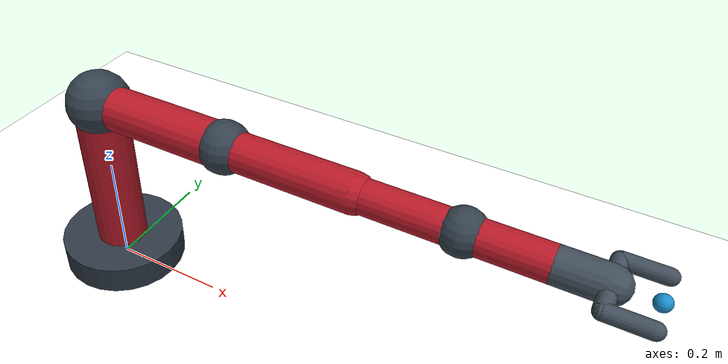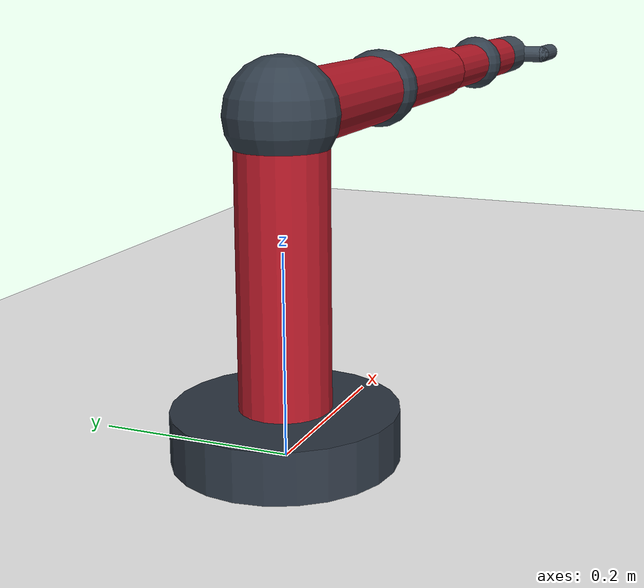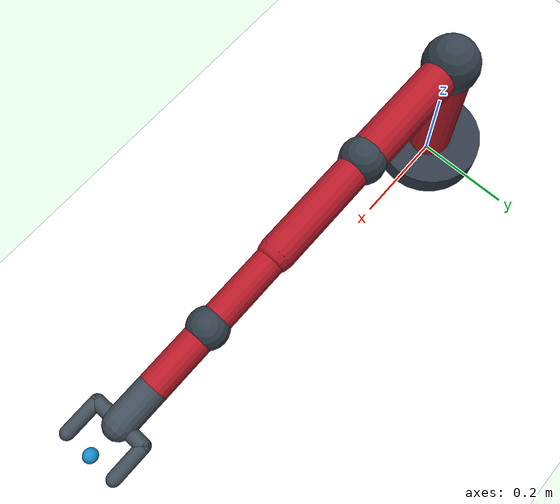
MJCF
<mujoco model="Onboarding six joint teaching arm">
  <!-- Teaching model: no gravity, no arm contacts, simplified geometry/inertia. -->
  <compiler angle="radian"/>
  <option timestep="0.002" gravity="0 0 0" integrator="implicitfast"/>
  <visual>
    <global offwidth="1600" offheight="1000"/>
    <headlight ambient="0.5 0.5 0.5" diffuse="0.5 0.5 0.5" specular="0.2 0.2 0.2"/>
    <rgba haze="0.9 0.92 0.94 1"/>
  </visual>
  <default>
    <joint type="hinge" limited="true" range="-2.5 2.5" damping="0.5" armature="0.02"/>
    <geom type="capsule" size="0.027" density="500" contype="0" conaffinity="0" rgba="0.72 0.1 0.16 1"/>
    <position kp="40" kv="8" ctrllimited="true" ctrlrange="-2.5 2.5"/>
  </default>
  <asset>
    <texture name="floor" type="2d" builtin="checker" rgb1="0.89 0.91 0.92" rgb2="0.95 0.96 0.97" width="512" height="512"/>
    <material name="floor" texture="floor" texrepeat="4 4" reflectance="0.05"/>
  </asset>
  <worldbody>
    <light pos="0 -1 2" dir="0 0 -1" diffuse="0.8 0.8 0.8"/>
    <geom type="plane" size="2 2 0.1" material="floor" rgba="1 1 1 1"/>
    <geom type="cylinder" size="0.11 0.025" pos="0 0 0.025" rgba="0.18 0.22 0.27 1"/>
    <body name="base" pos="0 0 0.05">
      <joint name="j1" axis="0 0 1"/>
      <geom fromto="0 0 0 0 0 0.28" size="0.045"/>
      <geom type="sphere" size="0.055" pos="0 0 0.28" rgba="0.2 0.25 0.3 1"/>
      <body name="shoulder" pos="0 0 0.28">
        <joint name="j2" axis="0 1 0"/>
        <geom fromto="0 0 0 0.25 0 0" size="0.037"/>
        <body name="elbow" pos="0.25 0 0">
          <joint name="j3" axis="0 1 0"/>
          <geom type="sphere" size="0.043" rgba="0.2 0.25 0.3 1"/>
          <geom fromto="0 0 0 0.22 0 0" size="0.032"/>
          <body name="wrist1" pos="0.22 0 0">
            <joint name="j4" axis="1 0 0"/>
            <geom fromto="0 0 0 0.16 0 0"/>
            <body name="wrist2" pos="0.16 0 0">
              <joint name="j5" axis="0 1 0"/>
              <geom type="sphere" size="0.036" rgba="0.2 0.25 0.3 1"/>
              <geom fromto="0 0 0 0.12 0 0"/>
              <body name="tool" pos="0.12 0 0">
                <joint name="j6" axis="1 0 0"/>
                <geom fromto="0 0 0 0.07 0 0" rgba="0.25 0.3 0.35 1"/>
                <geom fromto="0.07 -0.05 0 0.07 0.05 0" size="0.012" rgba="0.25 0.3 0.35 1"/>
                <geom fromto="0.07 -0.05 0 0.13 -0.05 0" size="0.012" rgba="0.25 0.3 0.35 1"/>
                <geom fromto="0.07 0.05 0 0.13 0.05 0" size="0.012" rgba="0.25 0.3 0.35 1"/>
                <site name="tool_tip" pos="0.13 0 0" size="0.012" rgba="0.1 0.55 0.8 1"/>
              </body>
            </body>
          </body>
        </body>
      </body>
    </body>
  </worldbody>
  <actuator>
    <position name="a1" joint="j1"/>
    <position name="a2" joint="j2"/>
    <position name="a3" joint="j3"/>
    <position name="a4" joint="j4"/>
    <position name="a5" joint="j5"/>
    <position name="a6" joint="j6"/>
  </actuator>
</mujoco>
